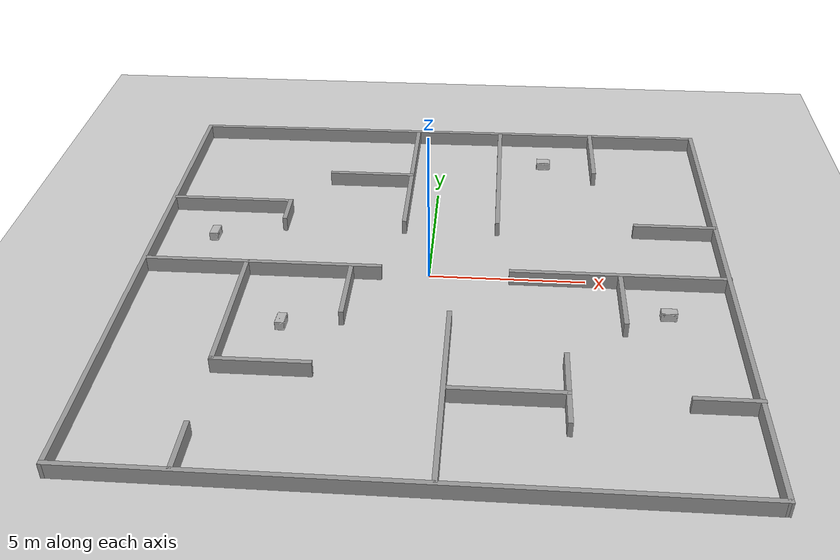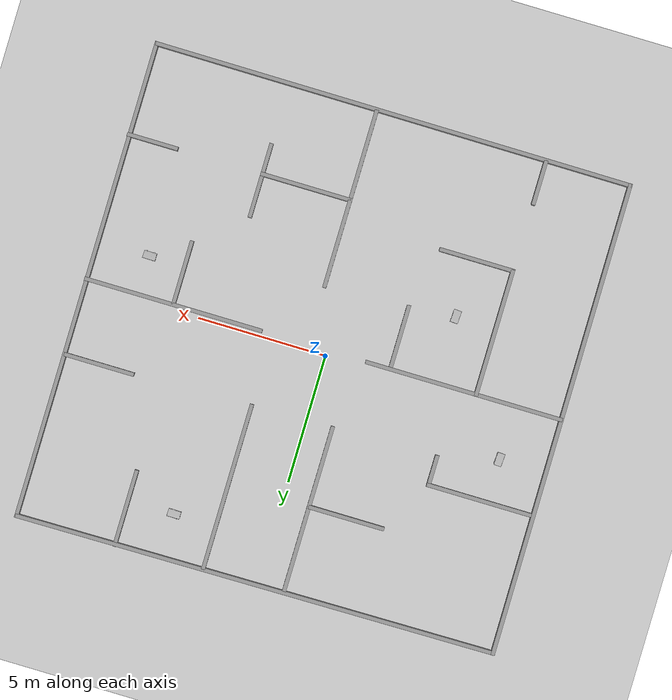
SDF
<sdf version="1.7">
 <world name="default">
  <light name="sun" type="directional">
   <cast_shadows>0</cast_shadows>
   <pose>0 0 10 0 -0 0</pose>
   <diffuse>0.8 0.8 0.8 1</diffuse>
   <specular>0.2 0.2 0.2 1</specular>
   <attenuation>
    <range>1000</range>
    <constant>0.9</constant>
    <linear>0.01</linear>
    <quadratic>0.001</quadratic>
   </attenuation>
   <direction>-0.5 0.1 -0.9</direction>
   <spot><inner_angle>0</inner_angle><outer_angle>0</outer_angle><falloff>0</falloff></spot>
  </light>
  <model name="ground_plane">
   <static>1</static>
   <link name="link">
    <collision name="collision">
     <geometry><plane><normal>0 0 1</normal><size>100 100</size></plane></geometry>
     <surface><friction><ode><mu>100</mu><mu2>50</mu2></ode></friction></surface>
    </collision>
    <visual name="visual">
     <cast_shadows>0</cast_shadows>
     <geometry><plane><normal>0 0 1</normal><size>100 100</size></plane></geometry>
     <material>
      <script><uri>file://media/materials/scripts/gazebo.material</uri><name>Gazebo/Grey</name></script>
     </material>
    </visual>
   </link>
  </model>
  <gravity>0 0 -9.8</gravity>
  <scene><ambient>0.4 0.4 0.4 1</ambient><background>0.7 0.7 0.7 1</background><shadows>1</shadows></scene>
  <magnetic_field>6e-06 2.3e-05 -4.2e-05</magnetic_field>
  <atmosphere type="adiabatic"/>
  <physics type="ode">
   <max_step_size>0.001</max_step_size>
   <real_time_factor>1</real_time_factor>
   <real_time_update_rate>1000</real_time_update_rate>
  </physics>
  <audio><device>default</device></audio>
  <spherical_coordinates>
   <surface_model>EARTH_WGS84</surface_model>
   <latitude_deg>0</latitude_deg>
   <longitude_deg>0</longitude_deg>
   <elevation>0</elevation>
   <heading_deg>0</heading_deg>
  </spherical_coordinates>
  <model name="Untitled">
   <pose>0.11955 -0.20367 3.1e-05 -1e-06 4e-06 0</pose>
   <link name="Wall_10">
    <collision name="Wall_10_Collision">
     <geometry><box><size>18.75 0.15 0.5</size></box></geometry>
     <pose>0 0 0.25 0 -0 0</pose>
    </collision>
    <visual name="Wall_10_Visual">
     <pose>0 0 0.25 0 -0 0</pose>
     <geometry><box><size>18.75 0.15 0.5</size></box></geometry>
     <material>
      <script><uri>file://media/materials/scripts/gazebo.material</uri><name>Gazebo/Grey</name></script>
      <ambient>1 1 1 1</ambient>
     </material>
     <meta><layer>0</layer></meta>
    </visual>
    <pose>9.35078 -0.000167 0 0 -0 -1.5708</pose>
    <inertial>
     <inertia><ixx>1</ixx><ixy>0</ixy><ixz>0</ixz><iyy>1</iyy><iyz>0</iyz><izz>1</izz></inertia>
     <mass>1</mass>
    </inertial>
   </link>
   <link name="Wall_11">
    <collision name="Wall_11_Collision">
     <geometry><box><size>18.8148 0.15 0.5</size></box></geometry>
     <pose>0 0 0.25 0 -0 0</pose>
    </collision>
    <visual name="Wall_11_Visual">
     <pose>0 0 0.25 0 -0 0</pose>
     <geometry><box><size>18.8148 0.15 0.5</size></box></geometry>
     <material>
      <script><uri>file://media/materials/scripts/gazebo.material</uri><name>Gazebo/Grey</name></script>
      <ambient>1 1 1 1</ambient>
     </material>
     <meta><layer>0</layer></meta>
    </visual>
    <pose>0.018281 -9.27167 0 0 -0 3.13854</pose>
    <inertial>
     <inertia><ixx>1</ixx><ixy>0</ixy><ixz>0</ixz><iyy>1</iyy><iyz>0</iyz><izz>1</izz></inertia>
     <mass>1</mass>
    </inertial>
   </link>
   <link name="Wall_12">
    <collision name="Wall_12_Collision">
     <geometry><box><size>18.5526 0.15 0.5</size></box></geometry>
     <pose>0 0 0.25 0 -0 0</pose>
    </collision>
    <visual name="Wall_12_Visual">
     <pose>0 0 0.25 0 -0 0</pose>
     <geometry><box><size>18.5526 0.15 0.5</size></box></geometry>
     <material>
      <script><uri>file://media/materials/scripts/gazebo.material</uri><name>Gazebo/Grey</name></script>
      <ambient>1 1 1 1</ambient>
     </material>
     <meta><layer>0</layer></meta>
    </visual>
    <pose>-9.34372 -0.042167 0 0 -0 1.574</pose>
    <inertial>
     <inertia><ixx>1</ixx><ixy>0</ixy><ixz>0</ixz><iyy>1</iyy><iyz>0</iyz><izz>1</izz></inertia>
     <mass>1</mass>
    </inertial>
   </link>
   <link name="Wall_14">
    <collision name="Wall_14_Collision">
     <geometry><box><size>7.75 0.15 0.5</size></box></geometry>
     <pose>0 0 0.25 0 -0 0</pose>
    </collision>
    <visual name="Wall_14_Visual">
     <pose>0 0 0.25 0 -0 0</pose>
     <geometry><box><size>7.75 0.15 0.5</size></box></geometry>
     <material>
      <script><uri>file://media/materials/scripts/gazebo.material</uri><name>Gazebo/Grey</name></script>
      <ambient>1 1 1 1</ambient>
     </material>
     <meta><layer>0</layer></meta>
    </visual>
    <pose>-5.50222 -0.023167 0 0 -0 0</pose>
    <inertial>
     <inertia><ixx>1</ixx><ixy>0</ixy><ixz>0</ixz><iyy>1</iyy><iyz>0</iyz><izz>1</izz></inertia>
     <mass>1</mass>
    </inertial>
   </link>
   <link name="Wall_16">
    <collision name="Wall_16_Collision">
     <geometry><box><size>6.5 0.15 0.5</size></box></geometry>
     <pose>0 0 0.25 0 -0 0</pose>
    </collision>
    <visual name="Wall_16_Visual">
     <pose>0 0 0.25 0 -0 0</pose>
     <geometry><box><size>6.5 0.15 0.5</size></box></geometry>
     <material>
      <script><uri>file://media/materials/scripts/gazebo.material</uri><name>Gazebo/Grey</name></script>
      <ambient>1 1 1 1</ambient>
     </material>
     <meta><layer>0</layer></meta>
    </visual>
    <pose>-1.14122 5.91383 0 0 -0 -1.5708</pose>
    <inertial>
     <inertia><ixx>1</ixx><ixy>0</ixy><ixz>0</ixz><iyy>1</iyy><iyz>0</iyz><izz>1</izz></inertia>
     <mass>1</mass>
    </inertial>
   </link>
   <link name="Wall_18">
    <collision name="Wall_18_Collision">
     <geometry><box><size>7 0.15 0.5</size></box></geometry>
     <pose>0 0 0.25 0 -0 0</pose>
    </collision>
    <visual name="Wall_18_Visual">
     <pose>0 0 0.25 0 -0 0</pose>
     <geometry><box><size>7 0.15 0.5</size></box></geometry>
     <material>
      <script><uri>file://media/materials/scripts/gazebo.material</uri><name>Gazebo/Grey</name></script>
      <ambient>1 1 1 1</ambient>
     </material>
     <meta><layer>0</layer></meta>
    </visual>
    <pose>5.94278 -0.023167 0 0 -0 0</pose>
    <inertial>
     <inertia><ixx>1</ixx><ixy>0</ixy><ixz>0</ixz><iyy>1</iyy><iyz>0</iyz><izz>1</izz></inertia>
     <mass>1</mass>
    </inertial>
   </link>
   <link name="Wall_20">
    <collision name="Wall_20_Collision">
     <geometry><box><size>6.5 0.15 0.5</size></box></geometry>
     <pose>0 0 0.25 0 -0 0</pose>
    </collision>
    <visual name="Wall_20_Visual">
     <pose>0 0 0.25 0 -0 0</pose>
     <geometry><box><size>6.5 0.15 0.5</size></box></geometry>
     <material>
      <script><uri>file://media/materials/scripts/gazebo.material</uri><name>Gazebo/Grey</name></script>
      <ambient>1 1 1 1</ambient>
     </material>
     <meta><layer>0</layer></meta>
    </visual>
    <pose>2.02478 5.98383 0 0 -0 -1.5708</pose>
    <inertial>
     <inertia><ixx>1</ixx><ixy>0</ixy><ixz>0</ixz><iyy>1</iyy><iyz>0</iyz><izz>1</izz></inertia>
     <mass>1</mass>
    </inertial>
   </link>
   <link name="Wall_22">
    <collision name="Wall_22_Collision">
     <geometry><box><size>4.17964 0.15 0.5</size></box></geometry>
     <pose>0 0 0.25 0 -0 0</pose>
    </collision>
    <visual name="Wall_22_Visual">
     <pose>0 0 0.25 0 -0 0</pose>
     <geometry><box><size>4.17964 0.15 0.5</size></box></geometry>
     <material>
      <script><uri>file://media/materials/scripts/gazebo.material</uri><name>Gazebo/Grey</name></script>
      <ambient>1 1 1 1</ambient>
     </material>
     <meta><layer>0</layer></meta>
    </visual>
    <pose>-7.25022 3.76383 0 0 -0 0</pose>
    <inertial>
     <inertia><ixx>1</ixx><ixy>0</ixy><ixz>0</ixz><iyy>1</iyy><iyz>0</iyz><izz>1</izz></inertia>
     <mass>1</mass>
    </inertial>
   </link>
   <link name="Wall_23">
    <collision name="Wall_23_Collision">
     <geometry><box><size>1.25 0.15 0.5</size></box></geometry>
     <pose>0 0 0.25 0 -0 0</pose>
    </collision>
    <visual name="Wall_23_Visual">
     <pose>0 0 0.25 0 -0 0</pose>
     <geometry><box><size>1.25 0.15 0.5</size></box></geometry>
     <material>
      <script><uri>file://media/materials/scripts/gazebo.material</uri><name>Gazebo/Grey</name></script>
      <ambient>1 1 1 1</ambient>
     </material>
     <meta><layer>0</layer></meta>
    </visual>
    <pose>-5.23522 3.21383 0 0 -0 -1.5708</pose>
    <inertial>
     <inertia><ixx>1</ixx><ixy>0</ixy><ixz>0</ixz><iyy>1</iyy><iyz>0</iyz><izz>1</izz></inertia>
     <mass>1</mass>
    </inertial>
   </link>
   <link name="Wall_25">
    <collision name="Wall_25_Collision">
     <geometry><box><size>3 0.15 0.5</size></box></geometry>
     <pose>0 0 0.25 0 -0 0</pose>
    </collision>
    <visual name="Wall_25_Visual">
     <pose>0 0 0.25 0 -0 0</pose>
     <geometry><box><size>3 0.15 0.5</size></box></geometry>
     <material>
      <script><uri>file://media/materials/scripts/gazebo.material</uri><name>Gazebo/Grey</name></script>
      <ambient>1 1 1 1</ambient>
     </material>
     <meta><layer>0</layer></meta>
    </visual>
    <pose>-2.60022 5.83983 0 0 -0 0</pose>
    <inertial>
     <inertia><ixx>1</ixx><ixy>0</ixy><ixz>0</ixz><iyy>1</iyy><iyz>0</iyz><izz>1</izz></inertia>
     <mass>1</mass>
    </inertial>
   </link>
   <link name="Wall_27">
    <collision name="Wall_27_Collision">
     <geometry><box><size>3 0.15 0.5</size></box></geometry>
     <pose>0 0 0.25 0 -0 0</pose>
    </collision>
    <visual name="Wall_27_Visual">
     <pose>0 0 0.25 0 -0 0</pose>
     <geometry><box><size>3 0.15 0.5</size></box></geometry>
     <material>
      <script><uri>file://media/materials/scripts/gazebo.material</uri><name>Gazebo/Grey</name></script>
      <ambient>1 1 1 1</ambient>
     </material>
     <meta><layer>0</layer></meta>
    </visual>
    <pose>5.48178 7.85883 0 0 -0 -1.5708</pose>
    <inertial>
     <inertia><ixx>1</ixx><ixy>0</ixy><ixz>0</ixz><iyy>1</iyy><iyz>0</iyz><izz>1</izz></inertia>
     <mass>1</mass>
    </inertial>
   </link>
   <link name="Wall_29">
    <collision name="Wall_29_Collision">
     <geometry><box><size>2.75 0.15 0.5</size></box></geometry>
     <pose>0 0 0.25 0 -0 0</pose>
    </collision>
    <visual name="Wall_29_Visual">
     <pose>0 0 0.25 0 -0 0</pose>
     <geometry><box><size>2.75 0.15 0.5</size></box></geometry>
     <material>
      <script><uri>file://media/materials/scripts/gazebo.material</uri><name>Gazebo/Grey</name></script>
      <ambient>1 1 1 1</ambient>
     </material>
     <meta><layer>0</layer></meta>
    </visual>
    <pose>7.99178 2.93583 0 0 -0 0</pose>
    <inertial>
     <inertia><ixx>1</ixx><ixy>0</ixy><ixz>0</ixz><iyy>1</iyy><iyz>0</iyz><izz>1</izz></inertia>
     <mass>1</mass>
    </inertial>
   </link>
   <link name="Wall_31">
    <collision name="Wall_31_Collision">
     <geometry><box><size>7 0.15 0.5</size></box></geometry>
     <pose>0 0 0.25 0 -0 0</pose>
    </collision>
    <visual name="Wall_31_Visual">
     <pose>0 0 0.25 0 -0 0</pose>
     <geometry><box><size>7 0.15 0.5</size></box></geometry>
     <material>
      <script><uri>file://media/materials/scripts/gazebo.material</uri><name>Gazebo/Grey</name></script>
      <ambient>1 1 1 1</ambient>
     </material>
     <meta><layer>0</layer></meta>
    </visual>
    <pose>0.666781 -5.76217 0 0 -0 -1.5708</pose>
    <inertial>
     <inertia><ixx>1</ixx><ixy>0</ixy><ixz>0</ixz><iyy>1</iyy><iyz>0</iyz><izz>1</izz></inertia>
     <mass>1</mass>
    </inertial>
   </link>
   <link name="Wall_33">
    <collision name="Wall_33_Collision">
     <geometry><box><size>4.97232 0.15 0.5</size></box></geometry>
     <pose>0 0 0.25 0 -0 0</pose>
    </collision>
    <visual name="Wall_33_Visual">
     <pose>0 0 0.25 0 -0 0</pose>
     <geometry><box><size>4.97232 0.15 0.5</size></box></geometry>
     <material>
      <script><uri>file://media/materials/scripts/gazebo.material</uri><name>Gazebo/Grey</name></script>
      <ambient>1 1 1 1</ambient>
     </material>
     <meta><layer>0</layer></meta>
    </visual>
    <pose>-5.98622 -2.44933 0 0 -0 -1.5708</pose>
    <inertial>
     <inertia><ixx>1</ixx><ixy>0</ixy><ixz>0</ixz><iyy>1</iyy><iyz>0</iyz><izz>1</izz></inertia>
     <mass>1</mass>
    </inertial>
   </link>
   <link name="Wall_34">
    <collision name="Wall_34_Collision">
     <geometry><box><size>2.965 0.15 0.5</size></box></geometry>
     <pose>0 0 0.25 0 -0 0</pose>
    </collision>
    <visual name="Wall_34_Visual">
     <pose>0 0 0.25 0 -0 0</pose>
     <geometry><box><size>2.965 0.15 0.5</size></box></geometry>
     <material>
      <script><uri>file://media/materials/scripts/gazebo.material</uri><name>Gazebo/Grey</name></script>
      <ambient>1 1 1 1</ambient>
     </material>
     <meta><layer>0</layer></meta>
    </visual>
    <pose>-4.57872 -4.89567 0 0 -0 0</pose>
    <inertial>
     <inertia><ixx>1</ixx><ixy>0</ixy><ixz>0</ixz><iyy>1</iyy><iyz>0</iyz><izz>1</izz></inertia>
     <mass>1</mass>
    </inertial>
   </link>
   <link name="Wall_36">
    <collision name="Wall_36_Collision">
     <geometry><box><size>3.54907 0.15 0.5</size></box></geometry>
     <pose>0 0 0.25 0 -0 0</pose>
    </collision>
    <visual name="Wall_36_Visual">
     <pose>0 0 0.25 0 -0 0</pose>
     <geometry><box><size>3.54907 0.15 0.5</size></box></geometry>
     <material>
      <script><uri>file://media/materials/scripts/gazebo.material</uri><name>Gazebo/Grey</name></script>
      <ambient>1 1 1 1</ambient>
     </material>
     <meta><layer>0</layer></meta>
    </visual>
    <pose>2.41932 -5.70917 0 0 -0 0</pose>
    <inertial>
     <inertia><ixx>1</ixx><ixy>0</ixy><ixz>0</ixz><iyy>1</iyy><iyz>0</iyz><izz>1</izz></inertia>
     <mass>1</mass>
    </inertial>
   </link>
   <link name="Wall_37">
    <collision name="Wall_37_Collision">
     <geometry><box><size>1.75 0.15 0.5</size></box></geometry>
     <pose>0 0 0.25 0 -0 0</pose>
    </collision>
    <visual name="Wall_37_Visual">
     <pose>0 0 0.25 0 -0 0</pose>
     <geometry><box><size>1.75 0.15 0.5</size></box></geometry>
     <material>
      <script><uri>file://media/materials/scripts/gazebo.material</uri><name>Gazebo/Grey</name></script>
      <ambient>1 1 1 1</ambient>
     </material>
     <meta><layer>0</layer></meta>
    </visual>
    <pose>4.11885 -4.87399 0 0 -0 1.5708</pose>
    <inertial>
     <inertia><ixx>1</ixx><ixy>0</ixy><ixz>0</ixz><iyy>1</iyy><iyz>0</iyz><izz>1</izz></inertia>
     <mass>1</mass>
    </inertial>
   </link>
   <link name="Wall_39">
    <collision name="Wall_39_Collision">
     <geometry><box><size>2.5 0.15 0.5</size></box></geometry>
     <pose>0 0 0.25 0 -0 0</pose>
    </collision>
    <visual name="Wall_39_Visual">
     <pose>0 0 0.25 0 -0 0</pose>
     <geometry><box><size>2.5 0.15 0.5</size></box></geometry>
     <material>
      <script><uri>file://media/materials/scripts/gazebo.material</uri><name>Gazebo/Grey</name></script>
      <ambient>1 1 1 1</ambient>
     </material>
     <meta><layer>0</layer></meta>
    </visual>
    <pose>5.94878 -1.28917 0 0 -0 -1.5708</pose>
    <inertial>
     <inertia><ixx>1</ixx><ixy>0</ixy><ixz>0</ixz><iyy>1</iyy><iyz>0</iyz><izz>1</izz></inertia>
     <mass>1</mass>
    </inertial>
   </link>
   <link name="Wall_41">
    <collision name="Wall_41_Collision">
     <geometry><box><size>2 0.15 0.5</size></box></geometry>
     <pose>0 0 0.25 0 -0 0</pose>
    </collision>
    <visual name="Wall_41_Visual">
     <pose>0 0 0.25 0 -0 0</pose>
     <geometry><box><size>2 0.15 0.5</size></box></geometry>
     <material>
      <script><uri>file://media/materials/scripts/gazebo.material</uri><name>Gazebo/Grey</name></script>
      <ambient>1 1 1 1</ambient>
     </material>
     <meta><layer>0</layer></meta>
    </visual>
    <pose>8.44878 -5.70717 0 0 -0 0</pose>
    <inertial>
     <inertia><ixx>1</ixx><ixy>0</ixy><ixz>0</ixz><iyy>1</iyy><iyz>0</iyz><izz>1</izz></inertia>
     <mass>1</mass>
    </inertial>
   </link>
   <link name="Wall_43">
    <collision name="Wall_43_Collision">
     <geometry><box><size>1.25 0.15 0.5</size></box></geometry>
     <pose>0 0 0.25 0 -0 0</pose>
    </collision>
    <visual name="Wall_43_Visual">
     <pose>0 0 0.25 0 -0 0</pose>
     <geometry><box><size>1.25 0.15 0.5</size></box></geometry>
     <material>
      <script><uri>file://media/materials/scripts/gazebo.material</uri><name>Gazebo/Grey</name></script>
      <ambient>1 1 1 1</ambient>
     </material>
     <meta><layer>0</layer></meta>
    </visual>
    <pose>4.11878 -6.29317 0 0 -0 -1.5708</pose>
    <inertial>
     <inertia><ixx>1</ixx><ixy>0</ixy><ixz>0</ixz><iyy>1</iyy><iyz>0</iyz><izz>1</izz></inertia>
     <mass>1</mass>
    </inertial>
   </link>
   <link name="Wall_45">
    <collision name="Wall_45_Collision">
     <geometry><box><size>2.5 0.15 0.5</size></box></geometry>
     <pose>0 0 0.25 0 -0 0</pose>
    </collision>
    <visual name="Wall_45_Visual">
     <pose>0 0 0.25 0 -0 0</pose>
     <geometry><box><size>2.5 0.15 0.5</size></box></geometry>
     <material>
      <script><uri>file://media/materials/scripts/gazebo.material</uri><name>Gazebo/Grey</name></script>
      <ambient>1 1 1 1</ambient>
     </material>
     <meta><layer>0</layer></meta>
    </visual>
    <pose>-2.60004 -1.2887 0 0 -0 -1.5708</pose>
    <inertial>
     <inertia><ixx>1</ixx><ixy>0</ixy><ixz>0</ixz><iyy>1</iyy><iyz>0</iyz><izz>1</izz></inertia>
     <mass>1</mass>
    </inertial>
   </link>
   <link name="Wall_47">
    <collision name="Wall_47_Collision">
     <geometry><box><size>1.75 0.15 0.5</size></box></geometry>
     <pose>0 0 0.25 0 -0 0</pose>
    </collision>
    <visual name="Wall_47_Visual">
     <pose>0 0 0.25 0 -0 0</pose>
     <geometry><box><size>1.75 0.15 0.5</size></box></geometry>
     <material>
      <script><uri>file://media/materials/scripts/gazebo.material</uri><name>Gazebo/Grey</name></script>
      <ambient>1 1 1 1</ambient>
     </material>
     <meta><layer>0</layer></meta>
    </visual>
    <pose>-6.00822 -8.37317 0 0 -0 1.5708</pose>
    <inertial>
     <inertia><ixx>1</ixx><ixy>0</ixy><ixz>0</ixz><iyy>1</iyy><iyz>0</iyz><izz>1</izz></inertia>
     <mass>1</mass>
    </inertial>
   </link>
   <link name="Wall_9">
    <collision name="Wall_9_Collision">
     <geometry><box><size>18.8745 0.15 0.5</size></box></geometry>
     <pose>0 0 0.25 0 -0 0</pose>
    </collision>
    <visual name="Wall_9_Visual">
     <pose>0 0 0.25 0 -0 0</pose>
     <geometry><box><size>18.8745 0.15 0.5</size></box></geometry>
     <material>
      <script><uri>file://media/materials/scripts/gazebo.material</uri><name>Gazebo/Grey</name></script>
      <ambient>1 1 1 1</ambient>
     </material>
     <meta><layer>0</layer></meta>
    </visual>
    <pose>-0.011219 9.22933 0 0 -0 0.00753</pose>
    <inertial>
     <inertia><ixx>1</ixx><ixy>0</ixy><ixz>0</ixz><iyy>1</iyy><iyz>0</iyz><izz>1</izz></inertia>
     <mass>1</mass>
    </inertial>
   </link>
  </model>
  <light name="user_point_light_0" type="point">
   <pose>-12.9439 -15.4312 1 0 -0 0</pose>
   <diffuse>0.5 0.5 0.5 1</diffuse>
   <specular>0.1 0.1 0.1 1</specular>
   <attenuation>
    <range>20</range>
    <constant>0.5</constant>
    <linear>0.01</linear>
    <quadratic>0.001</quadratic>
   </attenuation>
   <cast_shadows>0</cast_shadows>
   <direction>0 0 -1</direction>
   <spot><inner_angle>0</inner_angle><outer_angle>0</outer_angle><falloff>0</falloff></spot>
  </light>
  <light name="user_point_light_1" type="point">
   <pose>-0.306088 -16.9956 1 0 -0 0</pose>
   <diffuse>0.5 0.5 0.5 1</diffuse>
   <specular>0.1 0.1 0.1 1</specular>
   <attenuation>
    <range>20</range>
    <constant>0.5</constant>
    <linear>0.01</linear>
    <quadratic>0.001</quadratic>
   </attenuation>
   <cast_shadows>0</cast_shadows>
   <direction>0 0 -1</direction>
   <spot><inner_angle>0</inner_angle><outer_angle>0</outer_angle><falloff>0</falloff></spot>
  </light>
  <light name="user_point_light_2" type="point">
   <pose>-14.7498 16.0911 1 0 -0 0</pose>
   <diffuse>0.5 0.5 0.5 1</diffuse>
   <specular>0.1 0.1 0.1 1</specular>
   <attenuation>
    <range>20</range>
    <constant>0.5</constant>
    <linear>0.01</linear>
    <quadratic>0.001</quadratic>
   </attenuation>
   <cast_shadows>0</cast_shadows>
   <direction>0 0 -1</direction>
   <spot><inner_angle>0</inner_angle><outer_angle>0</outer_angle><falloff>0</falloff></spot>
  </light>
  <light name="user_point_light_3" type="point">
   <pose>-0.023794 16.563 1 0 -0 0</pose>
   <diffuse>0.5 0.5 0.5 1</diffuse>
   <specular>0.1 0.1 0.1 1</specular>
   <attenuation>
    <range>20</range>
    <constant>0.5</constant>
    <linear>0.01</linear>
    <quadratic>0.001</quadratic>
   </attenuation>
   <cast_shadows>0</cast_shadows>
   <direction>0 0 -1</direction>
   <spot><inner_angle>0</inner_angle><outer_angle>0</outer_angle><falloff>0</falloff></spot>
  </light>
  <light name="user_point_light_4" type="point">
   <pose>12.1222 15.6836 1 0 -0 0</pose>
   <diffuse>0.5 0.5 0.5 1</diffuse>
   <specular>0.1 0.1 0.1 1</specular>
   <attenuation>
    <range>20</range>
    <constant>0.5</constant>
    <linear>0.01</linear>
    <quadratic>0.001</quadratic>
   </attenuation>
   <cast_shadows>0</cast_shadows>
   <direction>0 0 -1</direction>
   <spot><inner_angle>0</inner_angle><outer_angle>0</outer_angle><falloff>0</falloff></spot>
  </light>
  <light name="user_point_light_5" type="point">
   <pose>11.6879 -17.7731 1 0 -0 0</pose>
   <diffuse>0.5 0.5 0.5 1</diffuse>
   <specular>0.1 0.1 0.1 1</specular>
   <attenuation>
    <range>20</range>
    <constant>0.5</constant>
    <linear>0.01</linear>
    <quadratic>0.001</quadratic>
   </attenuation>
   <cast_shadows>0</cast_shadows>
   <direction>0 0 -1</direction>
   <spot><inner_angle>0</inner_angle><outer_angle>0</outer_angle><falloff>0</falloff></spot>
  </light>
  <light name="user_point_light_6" type="point">
   <pose>-21.2356 -5.01425 1 0 -0 0</pose>
   <diffuse>0.5 0.5 0.5 1</diffuse>
   <specular>0.1 0.1 0.1 1</specular>
   <attenuation>
    <range>20</range>
    <constant>0.5</constant>
    <linear>0.01</linear>
    <quadratic>0.001</quadratic>
   </attenuation>
   <cast_shadows>0</cast_shadows>
   <direction>0 0 -1</direction>
   <spot><inner_angle>0</inner_angle><outer_angle>0</outer_angle><falloff>0</falloff></spot>
  </light>
  <light name="user_point_light_7" type="point">
   <pose>-23.739 7.2463 1 0 -0 0</pose>
   <diffuse>0.5 0.5 0.5 1</diffuse>
   <specular>0.1 0.1 0.1 1</specular>
   <attenuation>
    <range>20</range>
    <constant>0.5</constant>
    <linear>0.01</linear>
    <quadratic>0.001</quadratic>
   </attenuation>
   <cast_shadows>0</cast_shadows>
   <direction>0 0 -1</direction>
   <spot><inner_angle>0</inner_angle><outer_angle>0</outer_angle><falloff>0</falloff></spot>
  </light>
  <light name="user_point_light_8" type="point">
   <pose>19.194 6.39327 1 0 -0 0</pose>
   <diffuse>0.5 0.5 0.5 1</diffuse>
   <specular>0.1 0.1 0.1 1</specular>
   <attenuation>
    <range>20</range>
    <constant>0.5</constant>
    <linear>0.01</linear>
    <quadratic>0.001</quadratic>
   </attenuation>
   <cast_shadows>0</cast_shadows>
   <direction>0 0 -1</direction>
   <spot><inner_angle>0</inner_angle><outer_angle>0</outer_angle><falloff>0</falloff></spot>
  </light>
  <light name="user_point_light_9" type="point">
   <pose>18.5272 -6.55163 1 0 -0 0</pose>
   <diffuse>0.5 0.5 0.5 1</diffuse>
   <specular>0.1 0.1 0.1 1</specular>
   <attenuation>
    <range>20</range>
    <constant>0.5</constant>
    <linear>0.01</linear>
    <quadratic>0.001</quadratic>
   </attenuation>
   <cast_shadows>0</cast_shadows>
   <direction>0 0 -1</direction>
   <spot><inner_angle>0</inner_angle><outer_angle>0</outer_angle><falloff>0</falloff></spot>
  </light>
  <model name="First Aid Kit_clone">
   <static>1</static>
   <link name="link">
    <collision name="collision">
     <geometry>
      <mesh>
       <uri>/workspaces/robot-programming-assessment-1/install/john_bot/share/john_bot/models/First Aid Kit/meshes/first_aid_kit.dae</uri>
       <scale>0.5 0.5 0.5</scale>
      </mesh>
     </geometry>
    </collision>
    <visual name="visual">
     <geometry>
      <mesh>
       <uri>/workspaces/robot-programming-assessment-1/install/john_bot/share/john_bot/models/First Aid Kit/meshes/first_aid_kit.dae</uri>
       <scale>0.5 0.5 0.5</scale>
      </mesh>
     </geometry>
    </visual>
   </link>
   <pose>3.79711 7.35478 0.139414 1.56885 -3.1e-05 3.12334</pose>
  </model>
  <model name="First Aid Kit_clone_0">
   <static>1</static>
   <link name="link">
    <collision name="collision">
     <geometry>
      <mesh>
       <uri>/workspaces/robot-programming-assessment-1/install/john_bot/share/john_bot/models/First Aid Kit/meshes/first_aid_kit.dae</uri>
       <scale>0.5 0.5 0.5</scale>
      </mesh>
     </geometry>
    </collision>
    <visual name="visual">
     <geometry>
      <mesh>
       <uri>/workspaces/robot-programming-assessment-1/install/john_bot/share/john_bot/models/First Aid Kit/meshes/first_aid_kit.dae</uri>
       <scale>0.5 0.5 0.5</scale>
      </mesh>
     </geometry>
    </visual>
   </link>
   <pose>7.45675 -1.75994 0.139285 1.57275 1.8e-05 -0.011455</pose>
  </model>
  <model name="First Aid Kit_clone_1">
   <static>1</static>
   <link name="link">
    <collision name="collision">
     <geometry>
      <mesh>
       <uri>/workspaces/robot-programming-assessment-1/install/john_bot/share/john_bot/models/First Aid Kit/meshes/first_aid_kit.dae</uri>
       <scale>0.5 0.5 0.5</scale>
      </mesh>
     </geometry>
    </collision>
    <visual name="visual">
     <geometry>
      <mesh>
       <uri>/workspaces/robot-programming-assessment-1/install/john_bot/share/john_bot/models/First Aid Kit/meshes/first_aid_kit.dae</uri>
       <scale>0.5 0.5 0.5</scale>
      </mesh>
     </geometry>
    </visual>
   </link>
   <pose>-7.40813 1.87307 0.139285 1.5709 -0.001947 1.51513</pose>
  </model>
  <model name="First Aid Kit_clone_1_clone">
   <static>1</static>
   <link name="link">
    <collision name="collision">
     <geometry>
      <mesh>
       <uri>/workspaces/robot-programming-assessment-1/install/john_bot/share/john_bot/models/First Aid Kit/meshes/first_aid_kit.dae</uri>
       <scale>0.5 0.5 0.5</scale>
      </mesh>
     </geometry>
    </collision>
    <visual name="visual">
     <geometry>
      <mesh>
       <uri>/workspaces/robot-programming-assessment-1/install/john_bot/share/john_bot/models/First Aid Kit/meshes/first_aid_kit.dae</uri>
       <scale>0.5 0.5 0.5</scale>
      </mesh>
     </geometry>
    </visual>
   </link>
   <pose>-4.29141 -2.84285 0.139285 1.5709 -0.001947 1.51513</pose>
  </model>
 </world>
</sdf>
